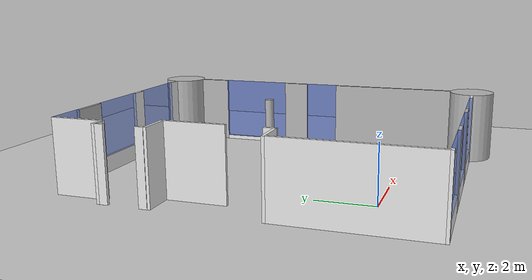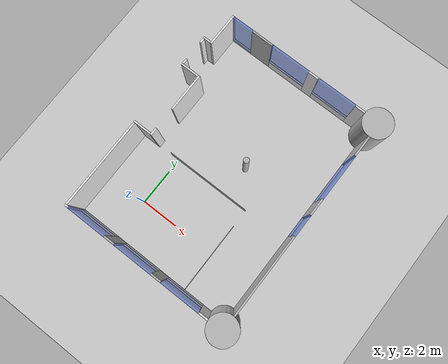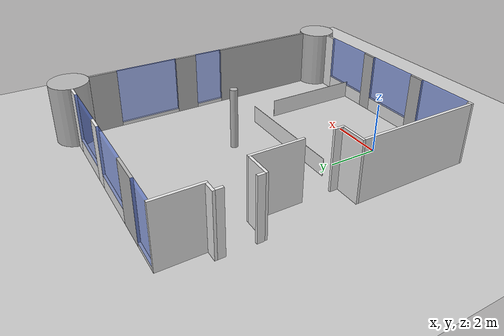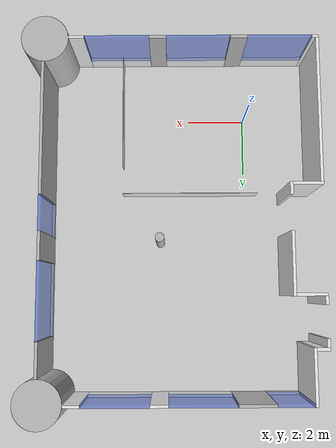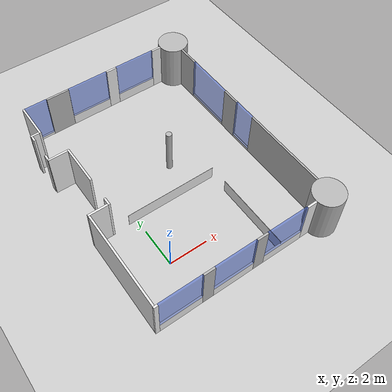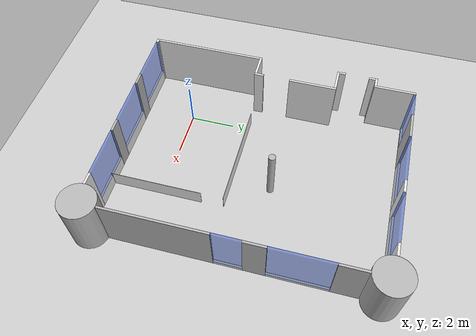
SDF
<sdf version="1.3">
 <world name="default">
  <model name="ground_plane">
   <static>1</static>
   <link name="link">
    <collision name="collision">
     <geometry>
      <plane><normal>0.000000 0.000000 1.000000</normal><size>100.000000 100.000000</size></plane>
     </geometry>
     <surface><friction><ode><mu>100.000000</mu><mu2>50.000000</mu2></ode></friction></surface>
    </collision>
    <visual name="visual">
     <cast_shadows>0</cast_shadows>
     <geometry>
      <plane><normal>0.000000 0.000000 1.000000</normal><size>100.000000 100.000000</size></plane>
     </geometry>
     <material>
      <script><uri>file://media/materials/scripts/gazebo.material</uri><name>Gazebo/Grey</name></script>
     </material>
    </visual>
    <velocity_decay><linear>0.000000</linear><angular>0.000000</angular></velocity_decay>
   </link>
  </model>
  <model name="room_description">
   <static>1</static>
   <pose>-0.400000 0.029679 0.000000 0.000000 0.000000 0.000000</pose>
   <link name="room_link">
    <pose>3.450000 4.800000 0.000000 0.000000 0.000000 0.000000</pose>
    <inertial>
     <pose>-0.770131 -0.722625 1.040380 0.000000 0.000000 0.000000</pose>
     <mass>40000.000000</mass>
     <inertia>
      <ixx>989938.000000</ixx>
      <ixy>-8475.350000</ixy>
      <ixz>40058.000000</ixz>
      <iyy>556543.000000</iyy>
      <iyz>28525.700000</iyz>
      <izz>1441930.000000</izz>
     </inertia>
    </inertial>
    <collision name="room_link_geom_e_wall_center_left_link">
     <pose>0.054500 -7.080000 1.250000 0.000000 0.000000 0.000000</pose>
     <geometry><box><size>0.580000 0.100000 2.500000</size></box></geometry>
    </collision>
    <collision name="room_link_geom_e_wall_center_right_link">
     <pose>-2.695500 -7.080000 1.250000 0.000000 0.000000 0.000000</pose>
     <geometry><box><size>0.580000 0.100000 2.500000</size></box></geometry>
    </collision>
    <collision name="room_link_geom_e_wall_center_window_link">
     <pose>-1.320500 -7.080000 0.292500 0.000000 0.000000 0.000000</pose>
     <geometry><box><size>2.170000 0.100000 0.585000</size></box></geometry>
    </collision>
    <collision name="room_link_geom_e_wall_left_link">
     <pose>2.800000 -7.080000 1.250000 0.000000 0.000000 0.000000</pose>
     <geometry><box><size>0.531000 0.100000 2.500000</size></box></geometry>
    </collision>
    <collision name="room_link_geom_e_wall_left_window_link">
     <pose>1.439500 -7.080000 0.292500 0.000000 0.000000 0.000000</pose>
     <geometry><box><size>2.190000 0.100000 0.585000</size></box></geometry>
    </collision>
    <collision name="room_link_geom_e_wall_right_link">
     <pose>-5.260500 -7.080000 1.250000 0.000000 0.000000 0.000000</pose>
     <geometry><box><size>0.210000 0.100000 2.500000</size></box></geometry>
    </collision>
    <collision name="room_link_geom_e_wall_right_window_link">
     <pose>-4.070500 -7.080000 0.292500 0.000000 0.000000 0.000000</pose>
     <geometry><box><size>2.170000 0.100000 0.585000</size></box></geometry>
    </collision>
    <collision name="room_link_geom_e_window_center_link">
     <pose>-1.320500 -7.080000 1.542500 0.000000 0.000000 0.000000</pose>
     <geometry><box><size>2.170000 0.100000 1.915000</size></box></geometry>
    </collision>
    <collision name="room_link_geom_e_window_left_link">
     <pose>1.439500 -7.080000 1.542500 0.000000 0.000000 0.000000</pose>
     <geometry><box><size>2.190000 0.100000 1.915000</size></box></geometry>
    </collision>
    <collision name="room_link_geom_e_window_right_link">
     <pose>-4.070500 -7.080000 1.542500 0.000000 0.000000 0.000000</pose>
     <geometry><box><size>2.170000 0.100000 1.915000</size></box></geometry>
    </collision>
    <collision name="room_link_geom_large_pillar_1_link">
     <pose>3.850000 -7.030000 1.250000 0.000000 0.000000 0.000000</pose>
     <geometry><cylinder><length>2.500000</length><radius>0.795000</radius></cylinder></geometry>
    </collision>
    <collision name="room_link_geom_large_pillar_2_link">
     <pose>3.850000 4.940000 1.250000 0.000000 0.000000 0.000000</pose>
     <geometry><cylinder><length>2.500000</length><radius>0.795000</radius></cylinder></geometry>
    </collision>
    <collision name="room_link_geom_n_l_wall_center_window_link">
     <pose>3.900000 1.705000 0.075000 0.000000 0.000000 0.000000</pose>
     <geometry><box><size>0.100000 2.580000 0.150000</size></box></geometry>
    </collision>
    <collision name="room_link_geom_n_l_wall_left_link">
     <pose>3.900000 3.570000 1.250000 0.000000 0.000000 0.000000</pose>
     <geometry><box><size>0.100000 1.150000 2.500000</size></box></geometry>
    </collision>
    <collision name="room_link_geom_n_l_wall_right_link">
     <pose>3.900000 -0.055000 1.250000 0.000000 0.000000 0.000000</pose>
     <geometry><box><size>0.100000 0.940000 2.500000</size></box></geometry>
    </collision>
    <collision name="room_link_geom_n_l_window_center_link">
     <pose>3.900000 1.705000 1.325000 0.000000 0.000000 0.000000</pose>
     <geometry><box><size>0.100000 2.580000 2.350000</size></box></geometry>
    </collision>
    <collision name="room_link_geom_n_r_wall_center_window_link">
     <pose>3.900000 -1.130000 0.075000 0.000000 0.000000 0.000000</pose>
     <geometry><box><size>0.100000 1.210000 0.150000</size></box></geometry>
    </collision>
    <collision name="room_link_geom_n_r_wall_right_link">
     <pose>3.900000 -3.985000 1.250000 0.000000 0.000000 0.000000</pose>
     <geometry><box><size>0.100000 4.500000 2.500000</size></box></geometry>
    </collision>
    <collision name="room_link_geom_n_r_window_center_link">
     <pose>3.900000 -1.130000 1.325000 0.000000 0.000000 0.000000</pose>
     <geometry><box><size>0.100000 1.210000 2.350000</size></box></geometry>
    </collision>
    <collision name="room_link_geom_partition_wall_shop_link">
     <pose>1.350000 -5.050000 0.370000 0.000000 0.000000 0.000000</pose>
     <geometry><box><size>0.010000 4.050000 0.740000</size></box></geometry>
    </collision>
    <collision name="room_link_geom_partition_wall_work1_link">
     <pose>-1.060000 -2.040000 0.370000 0.000000 0.000000 0.000000</pose>
     <geometry><box><size>4.810000 0.010000 0.740000</size></box></geometry>
    </collision>
    <collision name="room_link_geom_s_l_wall_door_left_link">
     <pose>-5.330500 1.740000 1.250000 0.000000 0.000000 0.000000</pose>
     <geometry><box><size>0.100000 0.280000 2.500000</size></box></geometry>
    </collision>
    <collision name="room_link_geom_s_l_wall_door_right_link">
     <pose>-5.330500 3.080000 1.250000 0.000000 0.000000 0.000000</pose>
     <geometry><box><size>0.100000 0.280000 2.500000</size></box></geometry>
    </collision>
    <collision name="room_link_geom_s_l_wall_left_link">
     <pose>-4.315500 0.545000 1.250000 0.000000 0.000000 0.000000</pose>
     <geometry><box><size>0.100000 2.110000 2.500000</size></box></geometry>
    </collision>
    <collision name="room_link_geom_s_l_wall_right_link">
     <pose>-4.900500 4.130000 1.250000 0.000000 0.000000 0.000000</pose>
     <geometry><box><size>0.100000 1.820000 2.500000</size></box></geometry>
    </collision>
    <collision name="room_link_geom_s_l_wall_v_left_link">
     <pose>-4.865500 1.550000 1.250000 0.000000 0.000000 0.000000</pose>
     <geometry><box><size>1.000000 0.100000 2.500000</size></box></geometry>
    </collision>
    <collision name="room_link_geom_s_l_wall_v_right_link">
     <pose>-5.165500 3.270000 1.250000 0.000000 0.000000 0.000000</pose>
     <geometry><box><size>0.430000 0.100000 2.500000</size></box></geometry>
    </collision>
    <collision name="room_link_geom_small_pillar_link">
     <pose>0.000000 -0.300000 1.250000 0.000000 0.000000 0.000000</pose>
     <geometry><cylinder><length>2.500000</length><radius>0.150000</radius></cylinder></geometry>
    </collision>
    <collision name="room_link_geom_w_wall_center_link">
     <pose>0.025000 4.990000 1.250000 0.000000 0.000000 0.000000</pose>
     <geometry><box><size>0.580000 0.100000 2.500000</size></box></geometry>
    </collision>
    <collision name="room_link_geom_w_wall_center_window_link">
     <pose>-1.365000 4.990000 0.292500 0.000000 0.000000 0.000000</pose>
     <geometry><box><size>2.200000 0.100000 0.585000</size></box></geometry>
    </collision>
    <collision name="room_link_geom_w_wall_left_link">
     <pose>-3.070250 4.990000 1.250000 0.000000 0.000000 0.000000</pose>
     <geometry><box><size>1.215000 0.100000 2.500000</size></box></geometry>
    </collision>
    <collision name="room_link_geom_w_wall_left_window_link">
     <pose>-4.263000 4.990000 0.075000 0.000000 0.000000 0.000000</pose>
     <geometry><box><size>1.175000 0.100000 0.150000</size></box></geometry>
    </collision>
    <collision name="room_link_geom_w_wall_right_link">
     <pose>2.785000 4.990000 1.250000 0.000000 0.000000 0.000000</pose>
     <geometry><box><size>0.540000 0.100000 2.500000</size></box></geometry>
    </collision>
    <collision name="room_link_geom_w_wall_right_window_link">
     <pose>1.415000 4.990000 0.292500 0.000000 0.000000 0.000000</pose>
     <geometry><box><size>2.200000 0.100000 0.585000</size></box></geometry>
    </collision>
    <collision name="room_link_geom_w_window_center_link">
     <pose>-1.365000 4.990000 1.542500 0.000000 0.000000 0.000000</pose>
     <geometry><box><size>2.200000 0.100000 1.915000</size></box></geometry>
    </collision>
    <collision name="room_link_geom_w_window_left_link">
     <pose>-4.263000 4.990000 1.325000 0.000000 0.000000 0.000000</pose>
     <geometry><box><size>1.175000 0.100000 2.350000</size></box></geometry>
    </collision>
    <collision name="room_link_geom_w_window_right_link">
     <pose>1.415000 4.990000 1.542500 0.000000 0.000000 0.000000</pose>
     <geometry><box><size>2.200000 0.100000 1.915000</size></box></geometry>
    </collision>
    <collision name="room_link_geom_wall_door_left_link">
     <pose>-4.315500 -1.900000 1.250000 0.000000 0.000000 0.000000</pose>
     <geometry><box><size>0.100000 0.420000 2.500000</size></box></geometry>
    </collision>
    <collision name="room_link_geom_wall_left_link">
     <pose>-5.315500 -4.570000 1.250000 0.000000 0.000000 0.000000</pose>
     <geometry><box><size>0.100000 4.920000 2.500000</size></box></geometry>
    </collision>
    <collision name="room_link_geom_wall_v_link">
     <pose>-4.865500 -2.060000 1.250000 0.000000 0.000000 0.000000</pose>
     <geometry><box><size>1.000000 0.100000 2.500000</size></box></geometry>
    </collision>
    <visual name="room_link_visuale_wall_center_left_link">
     <pose>0.054500 -7.080000 1.250000 0.000000 0.000000 0.000000</pose>
     <geometry><box><size>0.580000 0.100000 2.500000</size></box></geometry>
     <material><script><name>Custom/roboearth2</name><uri>__default__</uri></script></material>
    </visual>
    <visual name="room_link_visuale_wall_center_right_link">
     <pose>-2.695500 -7.080000 1.250000 0.000000 0.000000 0.000000</pose>
     <geometry><box><size>0.580000 0.100000 2.500000</size></box></geometry>
     <material><script><name>Custom/robohow</name><uri>__default__</uri></script></material>
    </visual>
    <visual name="room_link_visuale_wall_center_window_link">
     <pose>-1.320500 -7.080000 0.292500 0.000000 0.000000 0.000000</pose>
     <geometry><box><size>2.170000 0.100000 0.585000</size></box></geometry>
     <material><script><name>Gazebo/White</name><uri>__default__</uri></script></material>
    </visual>
    <visual name="room_link_visuale_wall_left_link">
     <pose>2.800000 -7.080000 1.250000 0.000000 0.000000 0.000000</pose>
     <geometry><box><size>0.531000 0.100000 2.500000</size></box></geometry>
     <material><script><name>Gazebo/White</name><uri>__default__</uri></script></material>
    </visual>
    <visual name="room_link_visuale_wall_left_window_link">
     <pose>1.439500 -7.080000 0.292500 0.000000 0.000000 0.000000</pose>
     <geometry><box><size>2.190000 0.100000 0.585000</size></box></geometry>
     <material><script><name>Gazebo/White</name><uri>__default__</uri></script></material>
    </visual>
    <visual name="room_link_visuale_wall_right_link">
     <pose>-5.260500 -7.080000 1.250000 0.000000 0.000000 0.000000</pose>
     <geometry><box><size>0.210000 0.100000 2.500000</size></box></geometry>
     <material><script><name>Gazebo/White</name><uri>__default__</uri></script></material>
    </visual>
    <visual name="room_link_visuale_wall_right_window_link">
     <pose>-4.070500 -7.080000 0.292500 0.000000 0.000000 0.000000</pose>
     <geometry><box><size>2.170000 0.100000 0.585000</size></box></geometry>
     <material><script><name>Gazebo/White</name><uri>__default__</uri></script></material>
    </visual>
    <visual name="room_link_visuale_window_center_link">
     <pose>-1.320500 -7.080000 1.542500 0.000000 0.000000 0.000000</pose>
     <geometry><box><size>2.170000 0.100000 1.915000</size></box></geometry>
     <material><script><name>Gazebo/BlueTransparent</name><uri>__default__</uri></script></material>
    </visual>
    <visual name="room_link_visuale_window_left_link">
     <pose>1.439500 -7.080000 1.542500 0.000000 0.000000 0.000000</pose>
     <geometry><box><size>2.190000 0.100000 1.915000</size></box></geometry>
     <material><script><name>Gazebo/BlueTransparent</name><uri>__default__</uri></script></material>
    </visual>
    <visual name="room_link_visuale_window_right_link">
     <pose>-4.070500 -7.080000 1.542500 0.000000 0.000000 0.000000</pose>
     <geometry><box><size>2.170000 0.100000 1.915000</size></box></geometry>
     <material><script><name>Gazebo/BlueTransparent</name><uri>__default__</uri></script></material>
    </visual>
    <visual name="room_link_visuallarge_pillar_1_link">
     <pose>3.850000 -7.030000 1.250000 0.000000 0.000000 0.000000</pose>
     <geometry><cylinder><length>2.500000</length><radius>0.795000</radius></cylinder></geometry>
    </visual>
    <visual name="room_link_visuallarge_pillar_2_link">
     <pose>3.850000 4.940000 1.250000 0.000000 0.000000 0.000000</pose>
     <geometry><cylinder><length>2.500000</length><radius>0.795000</radius></cylinder></geometry>
    </visual>
    <visual name="room_link_visualn_l_wall_center_window_link">
     <pose>3.900000 1.705000 0.075000 0.000000 0.000000 0.000000</pose>
     <geometry><box><size>0.100000 2.580000 0.150000</size></box></geometry>
     <material><script><name>Gazebo/White</name><uri>__default__</uri></script></material>
    </visual>
    <visual name="room_link_visualn_l_wall_left_link">
     <pose>3.900000 3.570000 1.250000 0.000000 0.000000 0.000000</pose>
     <geometry><box><size>0.100000 1.150000 2.500000</size></box></geometry>
     <material><script><name>Custom/saphari</name><uri>__default__</uri></script></material>
    </visual>
    <visual name="room_link_visualn_l_wall_right_link">
     <pose>3.900000 -0.055000 1.250000 0.000000 0.000000 0.000000</pose>
     <geometry><box><size>0.100000 0.940000 2.500000</size></box></geometry>
     <material><script><name>Custom/logos</name><uri>__default__</uri></script></material>
    </visual>
    <visual name="room_link_visualn_l_window_center_link">
     <pose>3.900000 1.705000 1.325000 0.000000 0.000000 0.000000</pose>
     <geometry><box><size>0.100000 2.580000 2.350000</size></box></geometry>
     <material><script><name>Gazebo/BlueTransparent</name><uri>__default__</uri></script></material>
    </visual>
    <visual name="room_link_visualn_r_wall_center_window_link">
     <pose>3.900000 -1.130000 0.075000 0.000000 0.000000 0.000000</pose>
     <geometry><box><size>0.100000 1.210000 0.150000</size></box></geometry>
     <material><script><name>Gazebo/White</name><uri>__default__</uri></script></material>
    </visual>
    <visual name="room_link_visualn_r_wall_right_link">
     <pose>3.900000 -3.985000 1.250000 0.000000 0.000000 0.000000</pose>
     <geometry><box><size>0.100000 4.500000 2.500000</size></box></geometry>
     <material><script><name>Custom/unihb_tum</name><uri>__default__</uri></script></material>
    </visual>
    <visual name="room_link_visualn_r_window_center_link">
     <pose>3.900000 -1.130000 1.325000 0.000000 0.000000 0.000000</pose>
     <geometry><box><size>0.100000 1.210000 2.350000</size></box></geometry>
     <material><script><name>Gazebo/BlueTransparent</name><uri>__default__</uri></script></material>
    </visual>
    <visual name="room_link_visualpartition_wall_shop_link">
     <pose>1.350000 -5.050000 0.370000 0.000000 0.000000 0.000000</pose>
     <geometry><box><size>0.010000 4.050000 0.740000</size></box></geometry>
     <material><script><name>Gazebo/White</name><uri>__default__</uri></script></material>
    </visual>
    <visual name="room_link_visualpartition_wall_work1_link">
     <pose>-1.060000 -2.040000 0.370000 0.000000 0.000000 0.000000</pose>
     <geometry><box><size>4.810000 0.010000 0.740000</size></box></geometry>
     <material><script><name>Gazebo/White</name><uri>__default__</uri></script></material>
    </visual>
    <visual name="room_link_visuals_l_wall_door_left_link">
     <pose>-5.330500 1.740000 1.250000 0.000000 0.000000 0.000000</pose>
     <geometry><box><size>0.100000 0.280000 2.500000</size></box></geometry>
     <material><script><name>Gazebo/White</name><uri>__default__</uri></script></material>
    </visual>
    <visual name="room_link_visuals_l_wall_door_right_link">
     <pose>-5.330500 3.080000 1.250000 0.000000 0.000000 0.000000</pose>
     <geometry><box><size>0.100000 0.280000 2.500000</size></box></geometry>
     <material><script><name>Gazebo/White</name><uri>__default__</uri></script></material>
    </visual>
    <visual name="room_link_visuals_l_wall_left_link">
     <pose>-4.315500 0.545000 1.250000 0.000000 0.000000 0.000000</pose>
     <geometry><box><size>0.100000 2.110000 2.500000</size></box></geometry>
     <material><script><name>Gazebo/White</name><uri>__default__</uri></script></material>
    </visual>
    <visual name="room_link_visuals_l_wall_right_link">
     <pose>-4.900500 4.130000 1.250000 0.000000 0.000000 0.000000</pose>
     <geometry><box><size>0.100000 1.820000 2.500000</size></box></geometry>
     <material><script><name>Gazebo/White</name><uri>__default__</uri></script></material>
    </visual>
    <visual name="room_link_visuals_l_wall_v_left_link">
     <pose>-4.865500 1.550000 1.250000 0.000000 0.000000 0.000000</pose>
     <geometry><box><size>1.000000 0.100000 2.500000</size></box></geometry>
     <material><script><name>Gazebo/White</name><uri>__default__</uri></script></material>
    </visual>
    <visual name="room_link_visuals_l_wall_v_right_link">
     <pose>-5.165500 3.270000 1.250000 0.000000 0.000000 0.000000</pose>
     <geometry><box><size>0.430000 0.100000 2.500000</size></box></geometry>
     <material><script><name>Gazebo/White</name><uri>__default__</uri></script></material>
    </visual>
    <visual name="room_link_visualsmall_pillar_link">
     <pose>0.000000 -0.300000 1.250000 0.000000 0.000000 0.000000</pose>
     <geometry><cylinder><length>2.500000</length><radius>0.150000</radius></cylinder></geometry>
    </visual>
    <visual name="room_link_visualw_wall_center_link">
     <pose>0.025000 4.990000 1.250000 0.000000 0.000000 0.000000</pose>
     <geometry><box><size>0.580000 0.100000 2.500000</size></box></geometry>
     <material><script><name>Gazebo/White</name><uri>__default__</uri></script></material>
    </visual>
    <visual name="room_link_visualw_wall_center_window_link">
     <pose>-1.365000 4.990000 0.292500 0.000000 0.000000 0.000000</pose>
     <geometry><box><size>2.200000 0.100000 0.585000</size></box></geometry>
     <material><script><name>Gazebo/White</name><uri>__default__</uri></script></material>
    </visual>
    <visual name="room_link_visualw_wall_left_link">
     <pose>-3.070250 4.990000 1.250000 0.000000 0.000000 0.000000</pose>
     <geometry><box><size>1.215000 0.100000 2.500000</size></box></geometry>
     <material><script><name>Custom/acat</name><uri>__default__</uri></script></material>
    </visual>
    <visual name="room_link_visualw_wall_left_window_link">
     <pose>-4.263000 4.990000 0.075000 0.000000 0.000000 0.000000</pose>
     <geometry><box><size>1.175000 0.100000 0.150000</size></box></geometry>
     <material><script><name>Gazebo/White</name><uri>__default__</uri></script></material>
    </visual>
    <visual name="room_link_visualw_wall_right_link">
     <pose>2.785000 4.990000 1.250000 0.000000 0.000000 0.000000</pose>
     <geometry><box><size>0.540000 0.100000 2.500000</size></box></geometry>
     <material><script><name>Gazebo/White</name><uri>__default__</uri></script></material>
    </visual>
    <visual name="room_link_visualw_wall_right_window_link">
     <pose>1.415000 4.990000 0.292500 0.000000 0.000000 0.000000</pose>
     <geometry><box><size>2.200000 0.100000 0.585000</size></box></geometry>
     <material><script><name>Gazebo/White</name><uri>__default__</uri></script></material>
    </visual>
    <visual name="room_link_visualw_window_center_link">
     <pose>-1.365000 4.990000 1.542500 0.000000 0.000000 0.000000</pose>
     <geometry><box><size>2.200000 0.100000 1.915000</size></box></geometry>
     <material><script><name>Gazebo/BlueTransparent</name><uri>__default__</uri></script></material>
    </visual>
    <visual name="room_link_visualw_window_left_link">
     <pose>-4.263000 4.990000 1.325000 0.000000 0.000000 0.000000</pose>
     <geometry><box><size>1.175000 0.100000 2.350000</size></box></geometry>
     <material><script><name>Gazebo/BlueTransparent</name><uri>__default__</uri></script></material>
    </visual>
    <visual name="room_link_visualw_window_right_link">
     <pose>1.415000 4.990000 1.542500 0.000000 0.000000 0.000000</pose>
     <geometry><box><size>2.200000 0.100000 1.915000</size></box></geometry>
     <material><script><name>Gazebo/BlueTransparent</name><uri>__default__</uri></script></material>
    </visual>
    <visual name="room_link_visualwall_door_left_link">
     <pose>-4.315500 -1.900000 1.250000 0.000000 0.000000 0.000000</pose>
     <geometry><box><size>0.100000 0.420000 2.500000</size></box></geometry>
     <material><script><name>Gazebo/White</name><uri>__default__</uri></script></material>
    </visual>
    <visual name="room_link_visualwall_left_link">
     <pose>-5.315500 -4.570000 1.250000 0.000000 0.000000 0.000000</pose>
     <geometry><box><size>0.100000 4.920000 2.500000</size></box></geometry>
     <material><script><name>Gazebo/White</name><uri>__default__</uri></script></material>
    </visual>
    <visual name="room_link_visualwall_v_link">
     <pose>-4.865500 -2.060000 1.250000 0.000000 0.000000 0.000000</pose>
     <geometry><box><size>1.000000 0.100000 2.500000</size></box></geometry>
     <material><script><name>Gazebo/White</name><uri>__default__</uri></script></material>
    </visual>
    <velocity_decay><linear>0.000000</linear><angular>0.000000</angular></velocity_decay>
    <velocity_decay><linear>0.000000</linear><angular>0.000000</angular></velocity_decay>
    <velocity_decay><linear>0.000000</linear><angular>0.000000</angular></velocity_decay>
    <velocity_decay><linear>0.000000</linear><angular>0.000000</angular></velocity_decay>
    <velocity_decay><linear>0.000000</linear><angular>0.000000</angular></velocity_decay>
    <velocity_decay><linear>0.000000</linear><angular>0.000000</angular></velocity_decay>
    <velocity_decay><linear>0.000000</linear><angular>0.000000</angular></velocity_decay>
    <velocity_decay><linear>0.000000</linear><angular>0.000000</angular></velocity_decay>
    <velocity_decay><linear>0.000000</linear><angular>0.000000</angular></velocity_decay>
    <velocity_decay><linear>0.000000</linear><angular>0.000000</angular></velocity_decay>
    <velocity_decay><linear>0.000000</linear><angular>0.000000</angular></velocity_decay>
    <velocity_decay><linear>0.000000</linear><angular>0.000000</angular></velocity_decay>
    <velocity_decay><linear>0.000000</linear><angular>0.000000</angular></velocity_decay>
    <velocity_decay><linear>0.000000</linear><angular>0.000000</angular></velocity_decay>
    <velocity_decay><linear>0.000000</linear><angular>0.000000</angular></velocity_decay>
    <velocity_decay><linear>0.000000</linear><angular>0.000000</angular></velocity_decay>
    <velocity_decay><linear>0.000000</linear><angular>0.000000</angular></velocity_decay>
    <velocity_decay><linear>0.000000</linear><angular>0.000000</angular></velocity_decay>
    <velocity_decay><linear>0.000000</linear><angular>0.000000</angular></velocity_decay>
    <velocity_decay><linear>0.000000</linear><angular>0.000000</angular></velocity_decay>
    <velocity_decay><linear>0.000000</linear><angular>0.000000</angular></velocity_decay>
    <velocity_decay><linear>0.000000</linear><angular>0.000000</angular></velocity_decay>
    <velocity_decay><linear>0.000000</linear><angular>0.000000</angular></velocity_decay>
    <velocity_decay><linear>0.000000</linear><angular>0.000000</angular></velocity_decay>
    <velocity_decay><linear>0.000000</linear><angular>0.000000</angular></velocity_decay>
    <velocity_decay><linear>0.000000</linear><angular>0.000000</angular></velocity_decay>
    <velocity_decay><linear>0.000000</linear><angular>0.000000</angular></velocity_decay>
    <velocity_decay><linear>0.000000</linear><angular>0.000000</angular></velocity_decay>
    <velocity_decay><linear>0.000000</linear><angular>0.000000</angular></velocity_decay>
    <velocity_decay><linear>0.000000</linear><angular>0.000000</angular></velocity_decay>
    <velocity_decay><linear>0.000000</linear><angular>0.000000</angular></velocity_decay>
    <velocity_decay><linear>0.000000</linear><angular>0.000000</angular></velocity_decay>
    <velocity_decay><linear>0.000000</linear><angular>0.000000</angular></velocity_decay>
    <velocity_decay><linear>0.000000</linear><angular>0.000000</angular></velocity_decay>
    <velocity_decay><linear>0.000000</linear><angular>0.000000</angular></velocity_decay>
    <velocity_decay><linear>0.000000</linear><angular>0.000000</angular></velocity_decay>
    <velocity_decay><linear>0.000000</linear><angular>0.000000</angular></velocity_decay>
    <velocity_decay><linear>0.000000</linear><angular>0.000000</angular></velocity_decay>
    <velocity_decay><linear>0.000000</linear><angular>0.000000</angular></velocity_decay>
    <velocity_decay><linear>0.000000</linear><angular>0.000000</angular></velocity_decay>
   </link>
   <pose>2.000000 3.000000 0.000000 0.000000 0.000000 0.000000</pose>
   <static>0</static>
  </model>
 </world>
</sdf>
